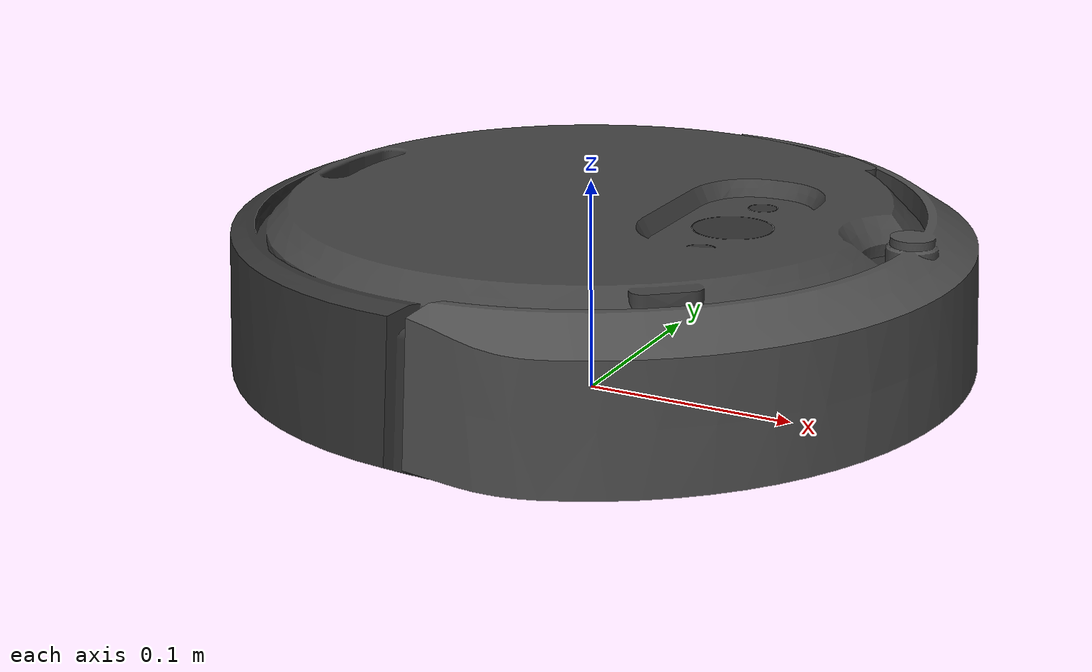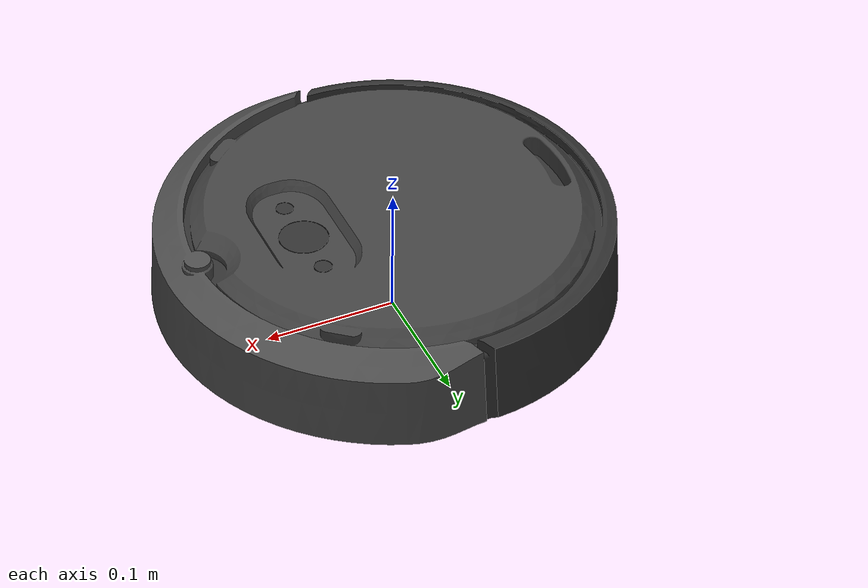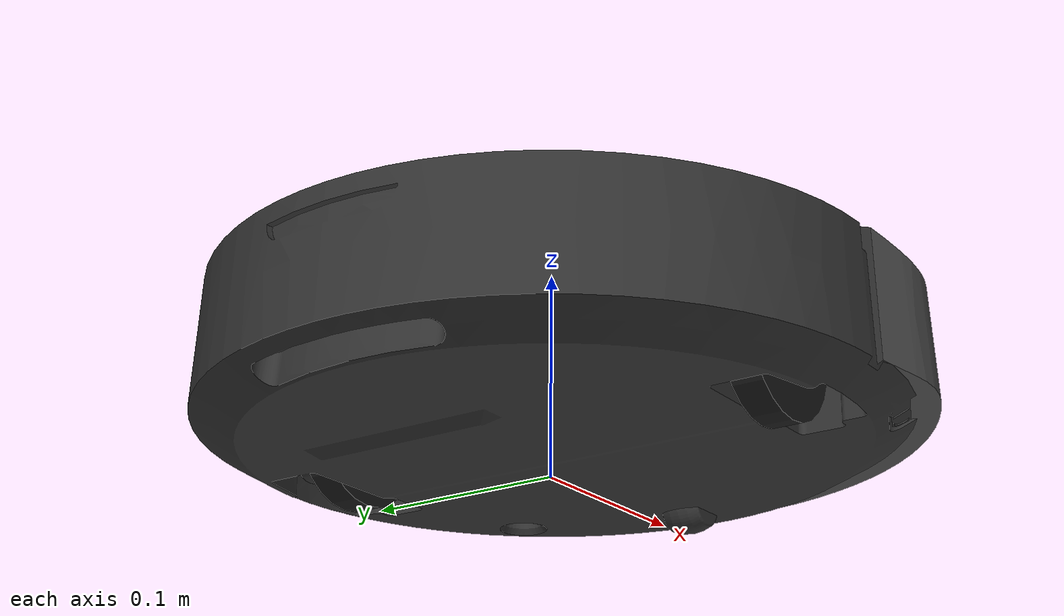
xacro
<?xml version="1.0" ?>
<robot name="create3" xmlns:xacro="http://ros.org/wiki/xacro">
  <xacro:include filename="$(find irobot_create_description)/urdf/bumper.urdf.xacro" />
  <xacro:include filename="$(find irobot_create_description)/urdf/button.urdf.xacro" />
  <xacro:include filename="$(find irobot_create_description)/urdf/caster.urdf.xacro" />
  <xacro:include filename="$(find irobot_create_description)/urdf/sensors/imu.urdf.xacro" />
  <xacro:include filename="$(find irobot_create_description)/urdf/common_properties.urdf.xacro"/>
  <xacro:include filename="$(find irobot_create_description)/urdf/wheel_with_wheeldrop.urdf.xacro" />

  <!-- Gazebo version -->
  <xacro:arg name="gazebo"                       default="ignition" />

  <!-- Namespace -->
  <xacro:arg name="namespace"                    default=""/>

  <!-- Mechanical properties -->
  <xacro:property name="body_z_offset"           value="${-2.5*cm2m}" />
  <xacro:property name="body_collision_z_offset" value="${1*cm2m}" />
  <xacro:property name="body_mass"               value="2.300" />
  <xacro:property name="body_radius"             value="${16.4*cm2m}" />
  <xacro:property name="body_length"             value="${6*cm2m}" />

  <xacro:if value="${'$(arg gazebo)' == 'ignition'}">
    <xacro:property name="body_cog_x_offset"       value="${2.28*cm2m}" />
  </xacro:if>
  <xacro:if value="${'$(arg gazebo)' == 'classic'}">
    <xacro:property name="body_cog_x_offset"       value="${0*cm2m}" />
  </xacro:if>

  <xacro:property name="bumper_mass"             value="0.1" />
  <xacro:property name="bumper_offset_z"         value="${-2.5*cm2m}" />
  <xacro:property name="bumper_inertial_x"       value="${8*cm2m}" />
  <xacro:property name="bumper_inertial_z"       value="${2*cm2m}"/>

  <xacro:property name="wheel_height"            value="${-2.75*cm2m}" />
  <xacro:property name="distance_between_wheels" value="${23.3*cm2m}" />

  <xacro:property name="caster_position_x"       value="${12.5*cm2m}" />
  <xacro:if value="${'$(arg gazebo)' == 'ignition'}">
    <xacro:property name="caster_position_z"       value="${-5.03*cm2m}" />
  </xacro:if>
  <xacro:if value="${'$(arg gazebo)' == 'classic'}">
    <xacro:property name="caster_position_z"       value="${-5.2*cm2m}" />
  </xacro:if>

  <xacro:property name="wheel_drop_offset_z"     value="${3.5*mm2m}"/>
  <xacro:property name="wheel_drop_z"            value="${wheel_height + wheel_drop_offset_z}"/>

  <xacro:property name="base_link_z_offset"     value="${6.42*cm2m}"/>

  <!-- Docking properties -->
  <xacro:property name="robot_model_name" value="create3"/>
  <xacro:property name="receiver_link_name" value="ir_omni"/>
  <xacro:property name="dock_model_name" value="standard_dock"/>
  <xacro:property name="emitter_link_name" value="halo_link"/>
  <xacro:arg name="visualize_rays" default="false"/>
  <!-- Create 3 base definition-->
  <link name="base_link">
    <visual>
      <origin xyz="0 0 ${body_z_offset + base_link_z_offset}" rpy="0 0 ${pi/2}"/>
      <geometry>
        <mesh filename="package://irobot_create_description/meshes/body_visual.dae" />
      </geometry>
    </visual>
    <collision name="create3_base_collision">
      <origin xyz="0 0 ${body_z_offset + body_collision_z_offset  + base_link_z_offset}" rpy="0 0 ${pi/2}"/>
      <geometry>
        <cylinder length="${body_length}" radius="${body_radius}"/>
      </geometry>
    </collision>
    <xacro:inertial_cylinder_with_pose mass="${body_mass}" radius="${body_radius}" length="${body_length}">
      <origin xyz="${body_cog_x_offset} 0 ${body_collision_z_offset + base_link_z_offset}"/>
    </xacro:inertial_cylinder_with_pose>
  </link>

  <xacro:if value="${'$(arg gazebo)' == 'ignition'}">
    <gazebo reference="base_link">
      <xacro:material_darkgray/>
    </gazebo>
  </xacro:if>

  <!-- Bumper -->
  <xacro:bumper
      gazebo="$(arg gazebo)"
      namespace="$(arg namespace)"
      visual_mesh="package://irobot_create_description/meshes/bumper_visual.dae"
      collision_mesh="package://irobot_create_description/meshes/bumper_collision.dae">
    <origin xyz="0 0 ${bumper_offset_z  + base_link_z_offset}"/>
    <inertial>
      <origin xyz="${bumper_inertial_x} 0 ${bumper_inertial_z}"/>
      <mass value="${bumper_mass}"/>
      <inertia ixx="0.0013483753405" ixy="0.0000000454352" ixz="0.0000014434849"
               iyy="0.0002521736852" iyz="-0.0000000006721" izz="0.0015442525386"/>
    </inertial>
  </xacro:bumper>

  <!-- IMU -->
  <xacro:imu_sensor gazebo="$(arg gazebo)" namespace="$(arg namespace)">
    <origin xyz="0.050613 0.043673 ${0.0202 + base_link_z_offset}"/>
  </xacro:imu_sensor>

  <!-- Wheels with mechanical wheel drop -->
  <xacro:wheel_with_wheeldrop name="left" gazebo="$(arg gazebo)" namespace="$(arg namespace)">
    <origin xyz="0 ${distance_between_wheels/2} ${wheel_drop_z  + base_link_z_offset}" rpy="${-pi/2} 0 0"/>
  </xacro:wheel_with_wheeldrop>

  <xacro:wheel_with_wheeldrop name="right" gazebo="$(arg gazebo)" namespace="$(arg namespace)">
    <origin xyz="0 ${-distance_between_wheels/2} ${wheel_drop_z  + base_link_z_offset}" rpy="${-pi/2} 0 0"/>
  </xacro:wheel_with_wheeldrop>

  <!-- Caster wheel -->
  <xacro:caster name="front_caster" parent_link="base_link">
    <origin xyz="${caster_position_x} 0 ${caster_position_z  + base_link_z_offset}" rpy="${-pi/2} 0 0"/>
  </xacro:caster>

  <xacro:if value="${'$(arg gazebo)' == 'classic'}">
    <gazebo>
      <plugin name="gazebo_ros2_control" filename="libgazebo_ros2_control.so">
        <parameters>$(find irobot_create_description)/config/control.yaml</parameters>
        <ros>
          <remapping>~/odom:=odom</remapping>
          <remapping>/tf:=tf</remapping>
          <remapping>/tf_static:=tf_static</remapping>
          <remapping>/diagnostics:=diagnostics</remapping>
          <namespace>$(arg namespace)</namespace>
        </ros>
      </plugin>
    </gazebo>
  </xacro:if>

  <xacro:if value="${'$(arg gazebo)' == 'ignition'}">
    <gazebo>
      <plugin filename="gz_ros2_control-system" name="gz_ros2_control::GazeboSimROS2ControlPlugin">
        <parameters>$(find irobot_create_description)/config/control.yaml</parameters>
        <ros>
          <remapping>~/odom:=odom</remapping>
          <remapping>/tf:=tf</remapping>
          <remapping>/tf_static:=tf_static</remapping>
          <remapping>/diagnostics:=diagnostics</remapping>
          <namespace>$(arg namespace)</namespace>
        </ros>
      </plugin>
    </gazebo>
  </xacro:if>

  <!-- Buttons -->
  <xacro:button
      name="button_1">
      <origin xyz="0.06 0.37 ${0.08 + base_link_z_offset}" rpy="0 ${-pi/2} 0"/>
  </xacro:button>
  <xacro:button
      name="button_2">
      <origin xyz="0.06 -0.37 ${0.08 + base_link_z_offset}" rpy="0 ${-pi/2} 0"/>
  </xacro:button>
  <xacro:button
      name="button_power">
      <origin xyz="0.06 0 ${0.08 + base_link_z_offset}" rpy="0 ${-pi/2} 0"/>
  </xacro:button>

  <!-- Plugins -->
  <xacro:if value="${'$(arg gazebo)' == 'classic'}">
    <!-- Ground truth pose -->
    <gazebo>
      <plugin name="gazebo_ros_p3d_robot" filename="libgazebo_ros_p3d.so">
        <ros>
          <namespace>$(arg namespace)</namespace>
          <remapping>odom:=sim_ground_truth_pose</remapping>
        </ros>
        <body_name>base_link</body_name>
        <frame_name>world</frame_name>
        <update_rate>62</update_rate>
        <xyz_offset>0 0 0</xyz_offset>
        <rpy_offset>0.0 0.0 0.0</rpy_offset>
        <gaussian_noise>0.0</gaussian_noise>
      </plugin>
    </gazebo>

    <!-- Dock status -->
    <gazebo>
      <plugin name="dock_status_publisher" filename="libgazebo_ros_create_docking_status.so">
        <ros>
          <namespace>$(arg namespace)</namespace>
          <remapping>~/out:=dock_status</remapping>
        </ros>
        <update_rate>1.0</update_rate>
        <robot_model_name>${robot_model_name}</robot_model_name>
        <receiver_link_name>${receiver_link_name}</receiver_link_name>
        <dock_model_name>${dock_model_name}</dock_model_name>
        <emitter_link_name>${emitter_link_name}</emitter_link_name>
      </plugin>
    </gazebo>
  </xacro:if>

  <xacro:if value="${'$(arg gazebo)' == 'ignition'}">
    <gazebo>
      <plugin filename="gz-sim-pose-publisher-system" name="gz::sim::systems::PosePublisher">
        <publish_link_pose>true</publish_link_pose>
        <publish_nested_model_pose>true</publish_nested_model_pose>
        <use_pose_vector_msg>true</use_pose_vector_msg>
        <update_frequency>62</update_frequency>
      </plugin>
    </gazebo>

    <gazebo>
      <plugin filename="gz-sim-contact-system" name="gz::sim::systems::Contact"></plugin>
    </gazebo>

    <gazebo>
      <plugin filename="gz-sim-sensors-system" name="gz::sim::systems::Sensors">
        <render_engine>ogre2</render_engine>
      </plugin>
    </gazebo>
  </xacro:if>
</robot>

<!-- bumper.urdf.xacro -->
<robot xmlns:xacro="http://ros.org/wiki/xacro">

<!-- The robot has a bumper with 5 contact sensors. The center one is
functional, while the 4 remaining ones are created as dummy links. -->
<xacro:macro name="dummy_bumper_zone" params="name parent_link:=base_link *origin">
  <xacro:property name="link_name" value="${name}"/>
  <xacro:property name="joint_name" value="${name}_joint"/>

  <joint name="${joint_name}" type="fixed">
    <parent link="${parent_link}"/>
    <child link="${link_name}"/>
    <xacro:insert_block name="origin"/>
  </joint>
  <link name="${link_name}"/>
</xacro:macro>

<xacro:macro name="bumper" params="name:=bumper namespace parent_link:=base_link update_rate:=62.0 gazebo visual_mesh collision_mesh
  *origin *inertial">
  <xacro:property name="link_name" value="${name}"/>
  <xacro:property name="joint_name" value="${name}_joint"/>

  <joint name="${joint_name}" type="fixed">
    <parent link="${parent_link}"/>
    <child link="${link_name}"/>
    <xacro:insert_block name="origin"/>
  </joint>
  <link name="${link_name}">
    <visual>
      <geometry>
        <mesh filename="${visual_mesh}"/>
      </geometry>
    </visual>
    <collision>
      <geometry>
        <mesh filename="${collision_mesh}"/>
      </geometry>
    </collision>
    <xacro:insert_block name="inertial"/>
  </link>

  <gazebo reference="${name}" >
    <mu1>0.1</mu1>
    <mu2>0.1</mu2>
    <maxVel>0.01</maxVel>
    <minDepth>0.001</minDepth>
    <maxContacts>10</maxContacts>
    <material>Gazebo/DarkGrey</material>
    <sensor name='${name}_contact_sensor' type='contact'>
      <always_on>true</always_on>
      <update_rate>${update_rate}</update_rate>
      <contact>
        <collision>${link_name}_collision</collision>
        <xacro:if value="${gazebo == 'ignition'}">
          <xacro:if value="${namespace == ''}">
            <topic>/bumper_contact</topic>
          </xacro:if>
          <xacro:if value="${namespace != ''}">
            <topic>${namespace}/bumper_contact</topic>
          </xacro:if>
        </xacro:if>
      </contact>
      <xacro:if value="${gazebo == 'classic'}">
        <plugin name="${name}_plugin" filename="libgazebo_ros_create_bumper.so">
          <ros>
            <namespace>${namespace}</namespace>
            <remapping>~/out:=_internal/bumper/event</remapping>
          </ros>
        </plugin>
      </xacro:if>
    </sensor>
  </gazebo>

  <gazebo reference="${joint_name}">
    <preserveFixedJoint>true</preserveFixedJoint>
  </gazebo>

  <xacro:dummy_bumper_zone
      name="bump_front_center">
      <origin xyz="0.175 0 0.039" rpy="0 0 0"/>
  </xacro:dummy_bumper_zone>

  <xacro:dummy_bumper_zone
      name="bump_front_left">
      <origin xyz="0.02345 -0.0875 0.025" rpy="0 0 0.5235985"/>
  </xacro:dummy_bumper_zone>

  <xacro:dummy_bumper_zone
      name="bump_front_right">
      <origin xyz="0.02345 0.0875 0.025" rpy="0 0 -0.5235985"/>
  </xacro:dummy_bumper_zone>

  <xacro:dummy_bumper_zone
      name="bump_left">
      <origin xyz="0.0875 -0.15155 0.025" rpy="0 0 1.047193"/>
  </xacro:dummy_bumper_zone>

  <xacro:dummy_bumper_zone
      name="bump_right">
      <origin xyz="0.0875 0.15155 0.025" rpy="0 0 -1.047193"/>
  </xacro:dummy_bumper_zone>

</xacro:macro>

</robot>

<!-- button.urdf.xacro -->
<robot xmlns:xacro="http://ros.org/wiki/xacro">

<xacro:macro name="button" params="name parent_link:=base_link *origin">
  <joint name="${name}_joint" type="fixed">
    <parent link="${parent_link}"/>
    <child link="${name}"/>
    <xacro:insert_block name="origin"/>
  </joint>
  <link name="${name}"/>
</xacro:macro>

</robot>

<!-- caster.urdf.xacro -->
<robot xmlns:xacro="http://ros.org/wiki/xacro">

<xacro:macro name="caster" params="name parent_link *origin">
  <xacro:include filename="$(find irobot_create_description)/urdf/common_properties.urdf.xacro"/>

  <xacro:property name="radius" value="${1*cm2m}" />
  <xacro:property name="mass"   value="0.01"/>

  <joint name="${name}_joint" type="fixed">
    <parent link="${parent_link}"/>
    <child link="${name}_link"/>
    <xacro:insert_block name="origin"/>
  </joint>
  <link name="${name}_link">
    <visual>
      <geometry>
        <sphere radius="${radius}"/>
      </geometry>
      <!-- Give black color to caster in Rviz -->
      <xacro:insert_block name="material_black"/>
    </visual>
    <collision>
      <geometry>
        <sphere radius="${radius}"/>
      </geometry>
    </collision>
    <xacro:inertial_sphere mass="${mass}" radius="${radius}"/>
  </link>

  <gazebo reference="${name}_joint">
    <preserveFixedJoint>true</preserveFixedJoint>
  </gazebo>

  <gazebo reference="${name}_link">
    <material>Gazebo/DarkGrey</material>
    <mu1>0.1</mu1>
    <mu2>0.1</mu2>
    <kp>1000000.0</kp>
    <kd>1.0</kd>
  </gazebo>

</xacro:macro>
</robot>

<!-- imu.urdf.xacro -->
<robot xmlns:xacro="http://ros.org/wiki/xacro">

<xacro:macro name="imu_sensor" params="name:=imu gazebo namespace parent:=base_link update_rate:=62 *origin">

  <joint name="${name}_joint" type="fixed">
    <xacro:insert_block name="origin"/>
    <parent link="${parent}"/>
    <child link="${name}_link"/>
  </joint>

  <link name="${name}_link">
      <xacro:inertial_dummy />
  </link>

  <gazebo reference="${name}_link">
    <sensor type="imu" name="${name}">
      <always_on>true</always_on>
      <update_rate>${update_rate}</update_rate>
      <imu>
        <angular_velocity>
          <x>
            <noise type="gaussian">
              <mean>0.0</mean>
              <stddev>0.0</stddev>
            </noise>
          </x>
          <y>
            <noise type="gaussian">
              <mean>0.0</mean>
              <stddev>0.0</stddev>
            </noise>
          </y>
          <z>
            <noise type="gaussian">
              <mean>0.0</mean>
              <stddev>0.0</stddev>
            </noise>
          </z>
        </angular_velocity>
        <linear_acceleration>
          <x>
            <noise type="gaussian">
              <mean>0.0</mean>
              <stddev>0.0</stddev>
            </noise>
          </x>
          <y>
            <noise type="gaussian">
              <mean>0.0</mean>
              <stddev>0.0</stddev>
            </noise>
          </y>
          <z>
            <noise type="gaussian">
              <mean>0.0</mean>
              <stddev>0.0</stddev>
            </noise>
          </z>
        </linear_acceleration>
      </imu>
      <xacro:if value="${gazebo == 'ignition'}">
        <plugin filename="gz-sim-imu-system" name="gz::sim::systems::Imu"/>
      </xacro:if>
      <xacro:if value="${gazebo == 'classic'}">
        <plugin name="${name}_plugin" filename="libgazebo_ros_create_imu.so">
          <ros>
            <namespace>${namespace}</namespace>
            <remapping>~/out:=imu</remapping>
          </ros>
        </plugin>
      </xacro:if>
    </sensor>
  </gazebo>

  <gazebo reference="${name}_joint">
    <preserveFixedJoint>true</preserveFixedJoint>
  </gazebo>

</xacro:macro>
</robot>

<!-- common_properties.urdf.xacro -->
<!-- Various useful macros -->
<robot name="xacro_properties" xmlns:xacro="http://ros.org/wiki/xacro">

  <xacro:macro name="inertial_cuboid_with_pose" params="mass x y z *origin">
    <inertial>
      <mass value="${mass}" />
      <xacro:insert_block name="origin"/>
      <inertia ixx="${(1/12) * mass * (y*y + z*z)}" ixy="0.0" ixz="0.0"
        iyy="${(1/12) * mass * (x*x + z*z)}" iyz="0.0"
        izz="${(1/12) * mass * (x*x + y*y)}" />
    </inertial>
  </xacro:macro>

  <xacro:macro name="inertial_cuboid" params="mass x y z">
    <xacro:inertial_cuboid_with_pose mass="${mass}" x="${x}" y="${y}" z="${z}">
      <origin xyz="0 0 0" />
    </xacro:inertial_cuboid_with_pose>
  </xacro:macro>

  <xacro:macro name="inertial_cylinder_with_pose" params="mass radius length *origin">
    <inertial>
      <xacro:insert_block name="origin"/>
      <mass value="${mass}" />
      <inertia ixx="${(1/12) * mass * (3*radius*radius + length*length)}" ixy="0.0" ixz="0.0"
        iyy="${(1/12) * mass * (3*radius*radius + length*length)}" iyz="0.0"
        izz="${(1/2) * mass * (radius*radius)}" />
    </inertial>
  </xacro:macro>

  <xacro:macro name="inertial_cylinder" params="mass radius length">
    <xacro:inertial_cylinder_with_pose mass="${mass}" radius="${radius}" length="${length}">
      <origin xyz="0 0 0" />
    </xacro:inertial_cylinder_with_pose>
  </xacro:macro>

  <xacro:macro name="inertial_sphere" params="mass radius">
    <inertial>
      <mass value="${mass}" />
      <inertia ixx="${(2/5) * mass * radius * radius}" ixy="0.0" ixz="0.0"
	             iyy="${(2/5) * mass * radius * radius}" iyz="0.0"
	             izz="${(2/5) * mass * radius * radius}" />
    </inertial>
  </xacro:macro>

  <xacro:macro name="inertial_dummy">
    <xacro:inertial_cuboid mass="0.01" x="0.01" y="0.01" z="0.01"/>
  </xacro:macro>

  <xacro:macro name="ray_sensor"
    params="sensor_name gazebo update_rate visualize
            h_samples h_res h_min_angle h_max_angle
            v_samples:=1 v_res:=1 v_min_angle:=0 v_max_angle:=0
            r_min r_max r_res *plugin">
    <!-- Classic -->
    <xacro:if value="${gazebo == 'classic'}">
      <sensor type="ray" name="${sensor_name}">
        <update_rate>${update_rate}</update_rate>
        <visualize>${visualize}</visualize>
        <always_on>true</always_on>
        <ray>
          <scan>
            <horizontal>
              <samples>${h_samples}</samples>
              <resolution>${h_res}</resolution>
              <min_angle>${h_min_angle}</min_angle>
              <max_angle>${h_max_angle}</max_angle>
            </horizontal>
            <vertical>
              <samples>${v_samples}</samples>
              <resolution>${v_res}</resolution>
              <min_angle>${v_min_angle}</min_angle>
              <max_angle>${v_max_angle}</max_angle>
            </vertical>
          </scan>
          <range>
            <min>${r_min}</min>
            <max>${r_max}</max>
            <resolution>${r_res}</resolution>
          </range>
        </ray>
        <!-- Noise is currently disabled -->
        <noise>
          <type>gaussian</type>
          <mean>0.0</mean>
          <stddev>0.0</stddev>
        </noise>
        <xacro:insert_block name="plugin"/>
      </sensor>
    </xacro:if>

    <!-- Ignition -->
    <xacro:if value="${gazebo == 'ignition'}">
      <sensor name="${sensor_name}" type="gpu_lidar">
        <update_rate>${update_rate}</update_rate>
        <visualize>${visualize}</visualize>
        <always_on>true</always_on>
        <lidar>
          <scan>
            <horizontal>
              <samples>${h_samples}</samples>
              <resolution>${h_res}</resolution>
              <min_angle>${h_min_angle}</min_angle>
              <max_angle>${h_max_angle}</max_angle>
            </horizontal>
            <vertical>
              <samples>${v_samples}</samples>
              <resolution>${v_res}</resolution>
              <min_angle>${v_min_angle}</min_angle>
              <max_angle>${v_max_angle}</max_angle>
            </vertical>
          </scan>
          <range>
            <min>${r_min}</min>
            <max>${r_max}</max>
            <resolution>${r_res}</resolution>
          </range>
        </lidar>
      </sensor>
    </xacro:if>
  </xacro:macro>

  <!-- Conversion macros -->
  <xacro:property name="cm2m"    value="${1/100.0}"/>
  <xacro:property name="mm2m"    value="${1/1000.0}"/>
  <xacro:property name="in2m"    value="0.0254"/>
  <xacro:property name="deg2rad" value="${pi/180.0}"/>

  <!-- Material colors -->
  <xacro:property name="material_black">
    <material name="black">
      <color rgba="0.1 0.1 0.1 1"/>
    </material>
  </xacro:property>

  <!-- Material macros -->
  <xacro:macro name="material_black">
    <visual>
      <material>
        <diffuse>0 0 0 1</diffuse>
        <specular>${80/255} ${80/255} ${80/255} 1</specular>
        <emissive>0 0 0 1</emissive>
      </material>
    </visual>
  </xacro:macro>

  <xacro:macro name="material_darkgray">
    <visual>
      <material>
        <diffuse>${3/255} ${3/255} ${3/255} 1</diffuse>
        <specular>0 0 0 1</specular>
        <emissive>0 0 0 1</emissive>
      </material>
    </visual>
  </xacro:macro>

</robot>

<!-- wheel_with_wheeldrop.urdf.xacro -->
<robot xmlns:xacro="http://ros.org/wiki/xacro">

<xacro:macro name="wheel_with_wheeldrop" params="name gazebo namespace parent_link:=base_link *origin">
  <xacro:include filename="$(find irobot_create_description)/urdf/wheel.urdf.xacro" />
  <xacro:include filename="$(find irobot_create_description)/urdf/wheel_drop.urdf.xacro" />

  <!-- Wheel Drop definition -->
  <xacro:wheel_drop name="${name}" gazebo="${gazebo}" parent_link="${parent_link}" namespace="${namespace}">
    <xacro:insert_block name="origin"/>
  </xacro:wheel_drop>

  <!-- Wheel definition -->
  <xacro:wheel name="${name}" gazebo="${gazebo}" parent_link="wheel_drop_${name}">
    <origin xyz="0 0 0" rpy="0 0 0"/>
  </xacro:wheel>

</xacro:macro>
</robot>

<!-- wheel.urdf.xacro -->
<robot xmlns:xacro="http://ros.org/wiki/xacro">

<xacro:macro name="wheel" params="name gazebo parent_link *origin">

  <xacro:property name="mass"   value="0.2" />
  <xacro:property name="radius" value="${3.575*cm2m}" />
  <xacro:property name="width"  value="${1.5*cm2m}" />

  <xacro:property name="wheel_link_name"  value="${name}_wheel"/>
  <xacro:property name="wheel_joint_name" value="${wheel_link_name}_joint"/>

  <joint name="${wheel_joint_name}" type="continuous">
    <parent link="${parent_link}"/>
    <child link="${wheel_link_name}"/>
    <xacro:insert_block name="origin"/>
    <axis xyz="0 0 1"/>
  </joint>

  <link name="${wheel_link_name}">
    <visual>
      <geometry>
        <cylinder length="${width}" radius="${radius}"/>
      </geometry>
      <!-- Give black color to wheels in Rviz -->
      <xacro:insert_block name="material_black"/>
    </visual>
    <collision>
      <geometry>
        <cylinder length="${width}" radius="${radius}"/>
      </geometry>
    </collision>
    <xacro:inertial_cylinder mass="${mass}" radius="${radius}"
      length="${width}" />
  </link>

  <gazebo reference="${wheel_link_name}">
    <mu1>1.0</mu1>
    <mu2>1.0</mu2>
    <kp>1000000.0</kp>
    <kd>100.0</kd>
    <minDepth>0.0001</minDepth>
    <maxVel>1.0</maxVel>
    <material>Gazebo/DarkGrey</material>
  </gazebo>

  <xacro:if value="${gazebo == 'classic'}">
    <ros2_control name="${wheel_link_name}_controller" type="system">
      <hardware>
        <plugin>gazebo_ros2_control/GazeboSystem</plugin>
      </hardware>
      <joint name="${wheel_joint_name}">
        <state_interface name="velocity" />
        <state_interface name="position" />
        <command_interface name="velocity" />
      </joint>
    </ros2_control>
  </xacro:if>

  <xacro:if value="${gazebo == 'ignition'}">
    <ros2_control name="${wheel_link_name}_controller" type="system">
      <hardware>
        <plugin>ign_ros2_control/IgnitionSystem</plugin>
      </hardware>
      <joint name="${wheel_joint_name}">
        <state_interface name="velocity" />
        <state_interface name="position" />
        <command_interface name="velocity" />
      </joint>
    </ros2_control>
  </xacro:if>

</xacro:macro>
</robot>

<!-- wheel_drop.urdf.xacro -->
<robot xmlns:xacro="http://ros.org/wiki/xacro">
<xacro:macro name="wheel_drop" params="name gazebo parent_link namespace *origin" >
  <xacro:include filename="$(find irobot_create_description)/urdf/common_properties.urdf.xacro"/>

  <xacro:property name="detection_threshold" value="${3*cm2m}"/>

  <xacro:if value="${gazebo == 'classic'}">
    <xacro:property name="spring_stiffness_nm"  value="400"/>
    <xacro:property name="spring_damping"       value="50"/>
    <xacro:property name="spring_friction"      value="0.1"/>
  </xacro:if>

  <xacro:if value="${gazebo == 'ignition'}">
    <xacro:property name="spring_stiffness_nm"  value="450"/>
    <xacro:property name="spring_damping"       value="50"/>
    <xacro:property name="spring_friction"      value="0.1"/>
  </xacro:if>

  <xacro:property name="wd_size" value="${5*cm2m}"/>
  <xacro:property name="wd_mass" value="0.05"/>

  <xacro:property name="update_rate"   value="62" />
  <xacro:property name="wd_link_name"  value="wheel_drop_${name}"/>
  <xacro:property name="wd_joint_name" value="${wd_link_name}_joint"/>

  <joint name="${wd_joint_name}" type="prismatic">
    <parent link="${parent_link}"/>
    <child link="${wd_link_name}"/>
    <xacro:insert_block name="origin"/>
    <axis xyz="0 1 0"/>
    <limit lower="0" upper="${detection_threshold}" effort="0" velocity="0"/>
    <!-- Damping is big enough to not make the body oscillate too much when it's lifted up -->
    <dynamics damping="${spring_damping}" friction="${spring_friction}"/>
  </joint>

  <!-- Gazebo parameters to simulate a spring -->
  <gazebo reference="${wd_joint_name}">
    <provideFeedback>false</provideFeedback>
    <implicitSpringDamper>true</implicitSpringDamper>
    <!-- This value should be high enough so that the wheeldrop can
          retract with the robot's weight (mass * gravity) -->
    <springStiffness>${spring_stiffness_nm}</springStiffness>
    <springReference>${detection_threshold}</springReference>
  </gazebo>

  <link name="${wd_link_name}">
    <xacro:inertial_cuboid mass="${wd_mass}" x="${wd_size}" y="${wd_size}" z="${wd_size}"/>
  </link>

  <xacro:if value="${gazebo == 'classic'}">
    <gazebo>
      <plugin name="${wd_link_name}_plugin" filename="libgazebo_ros_create_wheel_drop.so">
        <ros>
          <namespace>$(arg namespace)</namespace>
          <remapping>~/out:=_internal/wheel_drop/${name}_wheel/event</remapping>
        </ros>
        <update_rate>${update_rate}</update_rate>
        <detection_threshold>${detection_threshold}</detection_threshold>
        <joint_name>${wd_joint_name}</joint_name>
        <frame_id>${wd_link_name}</frame_id>
      </plugin>
    </gazebo>
  </xacro:if>

</xacro:macro>
</robot>
